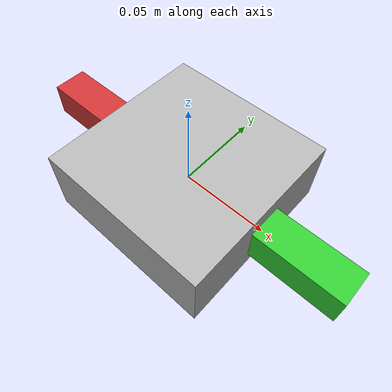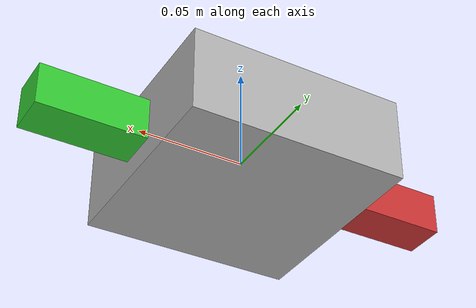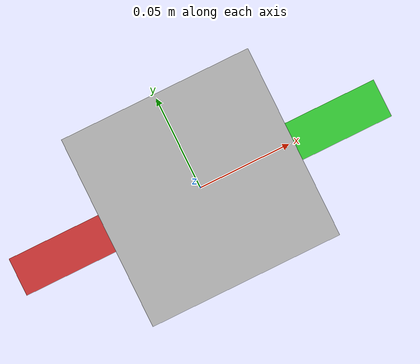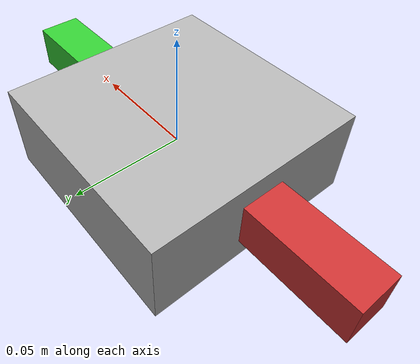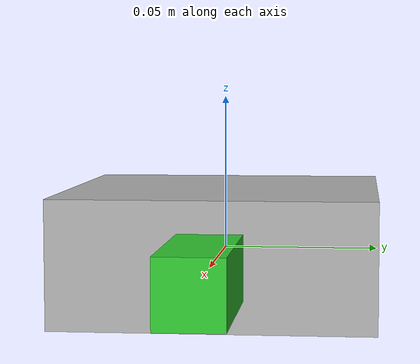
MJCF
<mujoco model="gripper">
    <compiler angle="radian" coordinate="local" inertiafromgeom="true"/>
    <option timestep="0.002" gravity="0 0 -9.81" iterations="50" integrator="Euler"/>

    <worldbody>
        <!-- 基座 -->
        <body name="base" pos="0 0 0">
            <joint type="free"/>
            <geom type="box" size="0.05 0.05 0.02" rgba="0.7 0.7 0.7 1"/>

            <!-- 左夹爪 -->
            <body name="left_gripper" pos="-0.05 0 0">
                <joint name="left_joint" type="hinge" axis="0 0 1" range="-0.5 0.5"/>
                <geom type="box" size="0.05 0.01 0.01" rgba="0.8 0.2 0.2 1"/>
                <!-- 力传感器 -->
                <site name="left_contact" pos="0.05 0 0" size="0.01"/>
            </body>

            <!-- 右夹爪 -->
            <body name="right_gripper" pos="0.05 0 0">
                <joint name="right_joint" type="hinge" axis="0 0 1" range="-0.5 0.5"/>
                <geom type="box" size="0.05 0.01 0.01" rgba="0.2 0.8 0.2 1"/>
                <!-- 力传感器 -->
                <site name="right_contact" pos="-0.05 0 0" size="0.01"/>
            </body>
        </body>
    </worldbody>

    <!-- 传感器定义 -->
    <sensor>
        <force name="left_force" site="left_contact"/>
        <force name="right_force" site="right_contact"/>
    </sensor>

    <!-- 执行器定义 -->
    <actuator>
        <motor joint="left_joint" name="left_motor"/>
        <motor joint="right_joint" name="right_motor"/>
    </actuator>
</mujoco>
